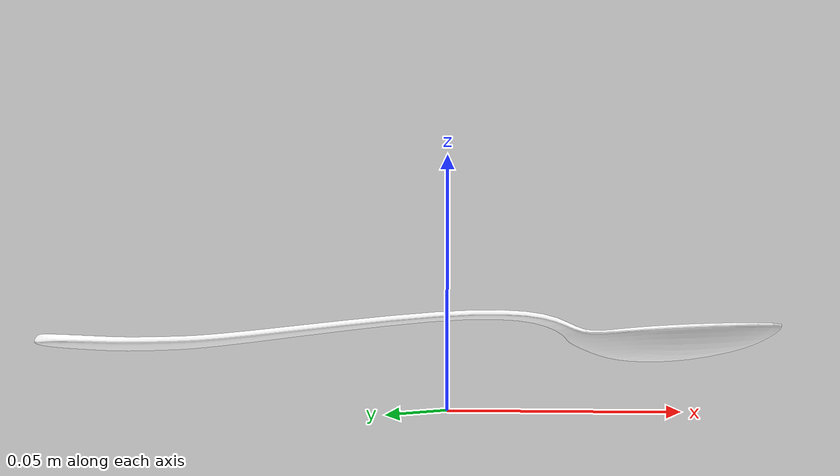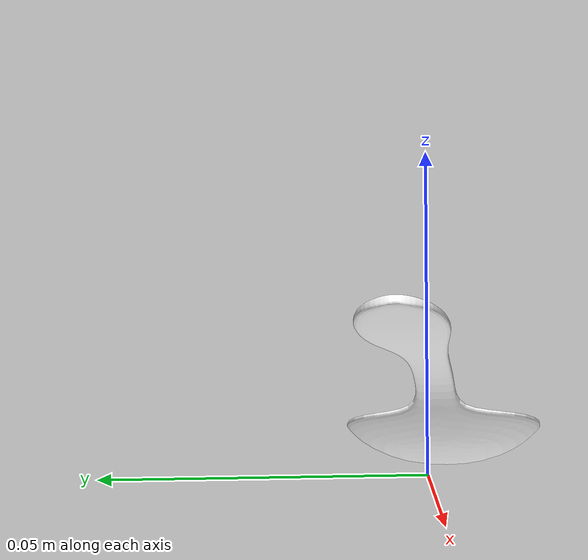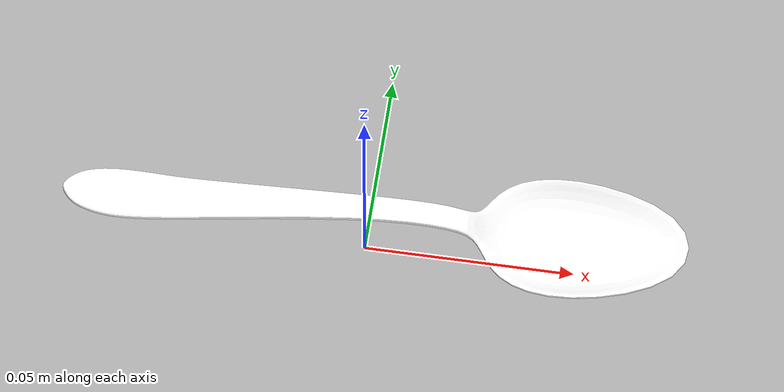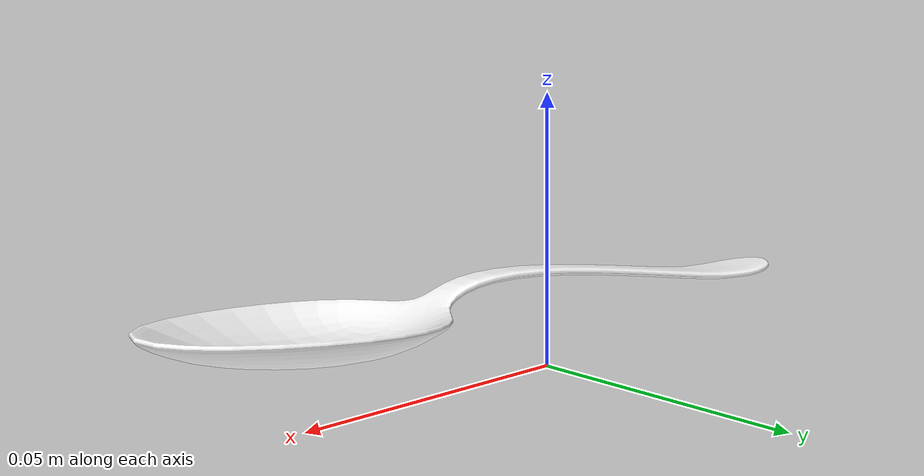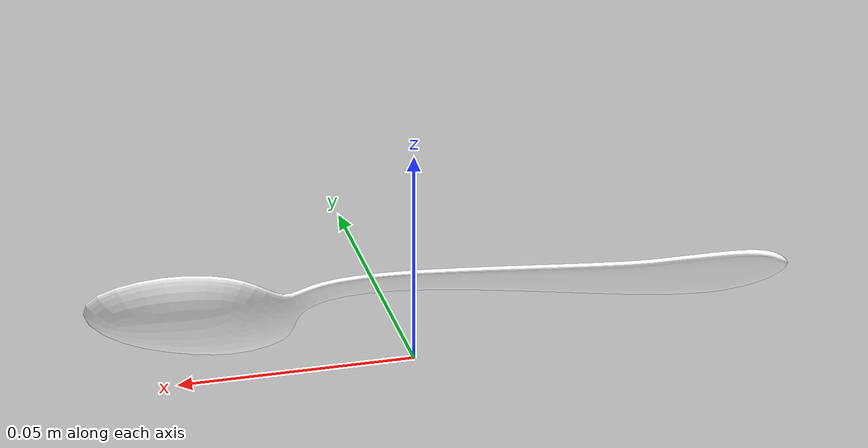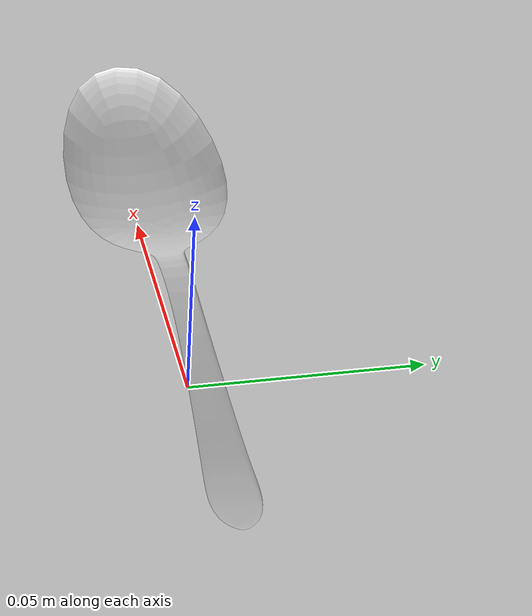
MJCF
<mujoco>
    <asset>
        <mesh name="spoon_visual" file="spoon_visual.stl" />
        <mesh name="spoon_handle_collision" file="spoon_handle_collision.stl" />
        <mesh name="spoon_front_collision" file="spoon_front_collision.stl" />
    </asset>
    <worldbody>
        <body name="spoon" pos="0.0 0.0 0.0" quat="1.0 0.0 0.0 0.0">
            <geom type="mesh" name="spoon_visual" mesh="spoon_visual" rgba="1 1 1 1" contype="0" conaffinity="0"/>
            <geom type="mesh" name="spoon_handle_collision" mesh="spoon_handle_collision" rgba="1 1 1 0" friction="3 0.01 0.001"/>
            <geom type="mesh" name="spoon_front_collision" mesh="spoon_front_collision" rgba="1 1 1 0"/>
            <joint name="spoon_joint" type="free"/>
            <inertial pos="0 0 0" mass="0.005" diaginertia="0.002 0.002 0.002" />
        </body>
    </worldbody>

</mujoco>
